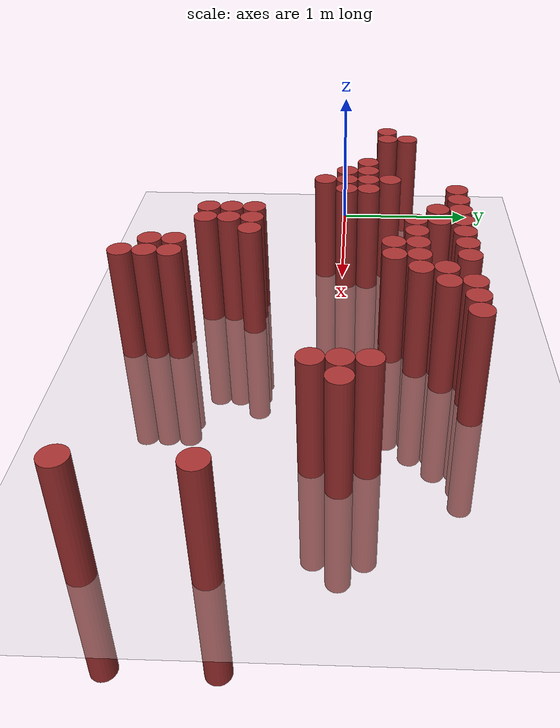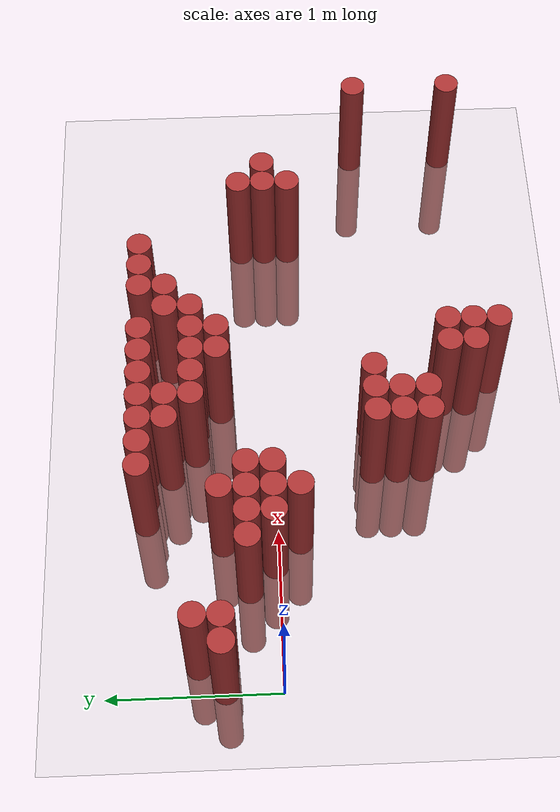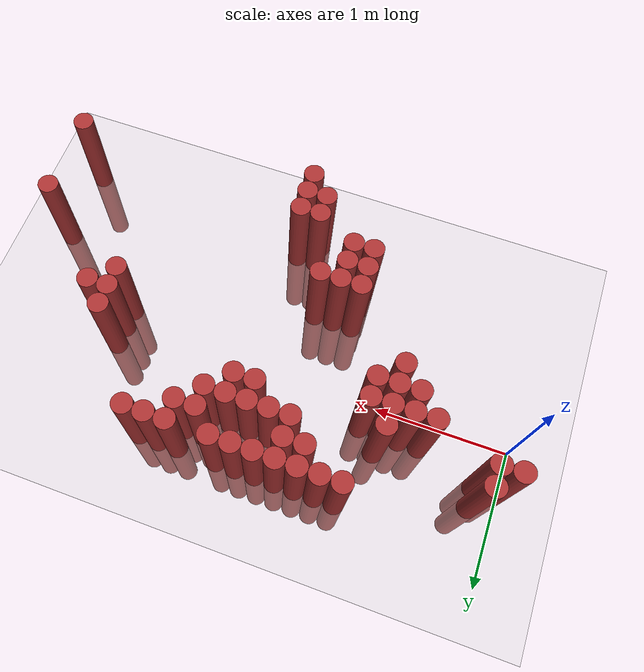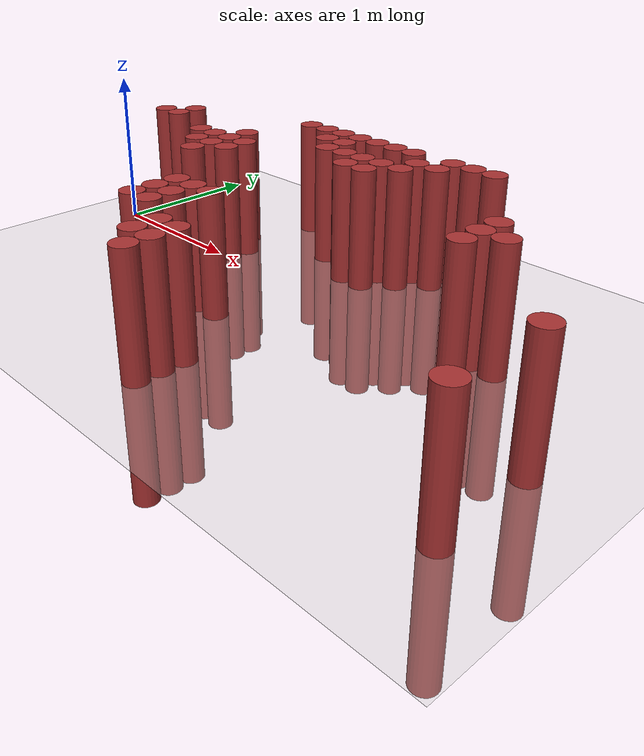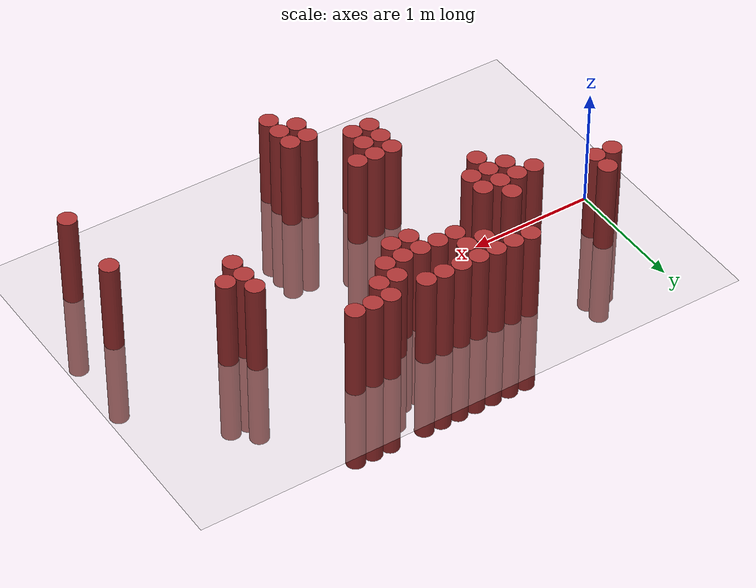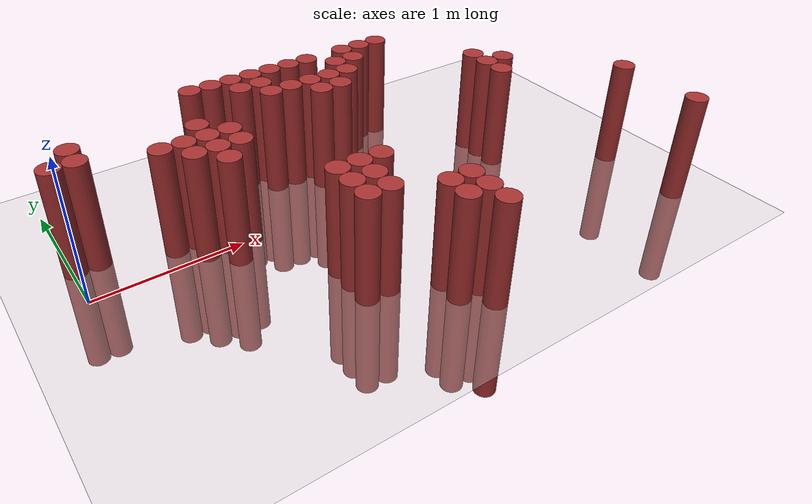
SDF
<sdf version="1.6">
 <world name="default">
  <model name="ground_plane">
   <static>1</static>
   <link name="link">
    <collision name="collision">
     <geometry><plane><normal>0 0 1</normal><size>100 100</size></plane></geometry>
     <surface><friction><ode><mu>100</mu><mu2>50</mu2></ode></friction></surface>
    </collision>
    <visual name="visual">
     <cast_shadows>0</cast_shadows>
     <geometry><plane><normal>0 0 1</normal><size>100 100</size></plane></geometry>
     <material>
      <script><uri>file://media/materials/scripts/gazebo.material</uri><name>Gazebo/Grey</name></script>
     </material>
    </visual>
   </link>
  </model>
  <model name="unit_cylinder_324">
   <static>1</static>
   <pose>0.025000 0.325000 0.000000 0.000000 0.000000 0.000000</pose>
   <link name="link">
    <inertial>
     <mass>1</mass>
     <inertia><ixx>0.145833</ixx><ixy>0</ixy><ixz>0</ixz><iyy>0.145833</iyy><iyz>0</iyz><izz>0.125</izz></inertia>
    </inertial>
    <collision name="collision">
     <geometry><cylinder><radius>0.075000</radius><length>1.5</length></cylinder></geometry>
    </collision>
    <visual name="visual">
     <geometry><cylinder><radius>0.075000</radius><length>1.5</length></cylinder></geometry>
     <material>
      <ambient>0.648000 0.192000 0.192000 1</ambient>
      <diffuse>0.648000 0.192000 0.192000 1</diffuse>
     </material>
     <material>
      <script><name>Gazebo/Grey</name><uri>file://media/materials/scripts/gazebo.material</uri></script>
     </material>
    </visual>
   </link>
  </model>
  <model name="unit_cylinder_327">
   <static>1</static>
   <pose>0.175000 0.325000 0.000000 0.000000 0.000000 0.000000</pose>
   <link name="link">
    <inertial>
     <mass>1</mass>
     <inertia><ixx>0.145833</ixx><ixy>0</ixy><ixz>0</ixz><iyy>0.145833</iyy><iyz>0</iyz><izz>0.125</izz></inertia>
    </inertial>
    <collision name="collision">
     <geometry><cylinder><radius>0.075000</radius><length>1.5</length></cylinder></geometry>
    </collision>
    <visual name="visual">
     <geometry><cylinder><radius>0.075000</radius><length>1.5</length></cylinder></geometry>
     <material>
      <ambient>0.648000 0.192000 0.192000 1</ambient>
      <diffuse>0.648000 0.192000 0.192000 1</diffuse>
     </material>
     <material>
      <script><name>Gazebo/Grey</name><uri>file://media/materials/scripts/gazebo.material</uri></script>
     </material>
    </visual>
   </link>
  </model>
  <model name="unit_cylinder_328">
   <static>1</static>
   <pose>0.175000 0.475000 0.000000 0.000000 0.000000 0.000000</pose>
   <link name="link">
    <inertial>
     <mass>1</mass>
     <inertia><ixx>0.145833</ixx><ixy>0</ixy><ixz>0</ixz><iyy>0.145833</iyy><iyz>0</iyz><izz>0.125</izz></inertia>
    </inertial>
    <collision name="collision">
     <geometry><cylinder><radius>0.075000</radius><length>1.5</length></cylinder></geometry>
    </collision>
    <visual name="visual">
     <geometry><cylinder><radius>0.075000</radius><length>1.5</length></cylinder></geometry>
     <material>
      <ambient>0.648000 0.192000 0.192000 1</ambient>
      <diffuse>0.648000 0.192000 0.192000 1</diffuse>
     </material>
     <material>
      <script><name>Gazebo/Grey</name><uri>file://media/materials/scripts/gazebo.material</uri></script>
     </material>
    </visual>
   </link>
  </model>
  <model name="unit_cylinder_335">
   <static>1</static>
   <pose>0.625000 0.175000 0.000000 0.000000 0.000000 0.000000</pose>
   <link name="link">
    <inertial>
     <mass>1</mass>
     <inertia><ixx>0.145833</ixx><ixy>0</ixy><ixz>0</ixz><iyy>0.145833</iyy><iyz>0</iyz><izz>0.125</izz></inertia>
    </inertial>
    <collision name="collision">
     <geometry><cylinder><radius>0.075000</radius><length>1.5</length></cylinder></geometry>
    </collision>
    <visual name="visual">
     <geometry><cylinder><radius>0.075000</radius><length>1.5</length></cylinder></geometry>
     <material>
      <ambient>0.648000 0.192000 0.192000 1</ambient>
      <diffuse>0.648000 0.192000 0.192000 1</diffuse>
     </material>
     <material>
      <script><name>Gazebo/Grey</name><uri>file://media/materials/scripts/gazebo.material</uri></script>
     </material>
    </visual>
   </link>
  </model>
  <model name="unit_cylinder_339">
   <static>1</static>
   <pose>0.775000 0.025000 0.000000 0.000000 0.000000 0.000000</pose>
   <link name="link">
    <inertial>
     <mass>1</mass>
     <inertia><ixx>0.145833</ixx><ixy>0</ixy><ixz>0</ixz><iyy>0.145833</iyy><iyz>0</iyz><izz>0.125</izz></inertia>
    </inertial>
    <collision name="collision">
     <geometry><cylinder><radius>0.075000</radius><length>1.5</length></cylinder></geometry>
    </collision>
    <visual name="visual">
     <geometry><cylinder><radius>0.075000</radius><length>1.5</length></cylinder></geometry>
     <material>
      <ambient>0.648000 0.192000 0.192000 1</ambient>
      <diffuse>0.648000 0.192000 0.192000 1</diffuse>
     </material>
     <material>
      <script><name>Gazebo/Grey</name><uri>file://media/materials/scripts/gazebo.material</uri></script>
     </material>
    </visual>
   </link>
  </model>
  <model name="unit_cylinder_340">
   <static>1</static>
   <pose>0.775000 0.175000 0.000000 0.000000 0.000000 0.000000</pose>
   <link name="link">
    <inertial>
     <mass>1</mass>
     <inertia><ixx>0.145833</ixx><ixy>0</ixy><ixz>0</ixz><iyy>0.145833</iyy><iyz>0</iyz><izz>0.125</izz></inertia>
    </inertial>
    <collision name="collision">
     <geometry><cylinder><radius>0.075000</radius><length>1.5</length></cylinder></geometry>
    </collision>
    <visual name="visual">
     <geometry><cylinder><radius>0.075000</radius><length>1.5</length></cylinder></geometry>
     <material>
      <ambient>0.648000 0.192000 0.192000 1</ambient>
      <diffuse>0.648000 0.192000 0.192000 1</diffuse>
     </material>
     <material>
      <script><name>Gazebo/Grey</name><uri>file://media/materials/scripts/gazebo.material</uri></script>
     </material>
    </visual>
   </link>
  </model>
  <model name="unit_cylinder_343">
   <static>1</static>
   <pose>0.925000 -0.125000 0.000000 0.000000 0.000000 0.000000</pose>
   <link name="link">
    <inertial>
     <mass>1</mass>
     <inertia><ixx>0.145833</ixx><ixy>0</ixy><ixz>0</ixz><iyy>0.145833</iyy><iyz>0</iyz><izz>0.125</izz></inertia>
    </inertial>
    <collision name="collision">
     <geometry><cylinder><radius>0.075000</radius><length>1.5</length></cylinder></geometry>
    </collision>
    <visual name="visual">
     <geometry><cylinder><radius>0.075000</radius><length>1.5</length></cylinder></geometry>
     <material>
      <ambient>0.648000 0.192000 0.192000 1</ambient>
      <diffuse>0.648000 0.192000 0.192000 1</diffuse>
     </material>
     <material>
      <script><name>Gazebo/Grey</name><uri>file://media/materials/scripts/gazebo.material</uri></script>
     </material>
    </visual>
   </link>
  </model>
  <model name="unit_cylinder_344">
   <static>1</static>
   <pose>0.925000 0.025000 0.000000 0.000000 0.000000 0.000000</pose>
   <link name="link">
    <inertial>
     <mass>1</mass>
     <inertia><ixx>0.145833</ixx><ixy>0</ixy><ixz>0</ixz><iyy>0.145833</iyy><iyz>0</iyz><izz>0.125</izz></inertia>
    </inertial>
    <collision name="collision">
     <geometry><cylinder><radius>0.075000</radius><length>1.5</length></cylinder></geometry>
    </collision>
    <visual name="visual">
     <geometry><cylinder><radius>0.075000</radius><length>1.5</length></cylinder></geometry>
     <material>
      <ambient>0.648000 0.192000 0.192000 1</ambient>
      <diffuse>0.648000 0.192000 0.192000 1</diffuse>
     </material>
     <material>
      <script><name>Gazebo/Grey</name><uri>file://media/materials/scripts/gazebo.material</uri></script>
     </material>
    </visual>
   </link>
  </model>
  <model name="unit_cylinder_345">
   <static>1</static>
   <pose>0.925000 0.175000 0.000000 0.000000 0.000000 0.000000</pose>
   <link name="link">
    <inertial>
     <mass>1</mass>
     <inertia><ixx>0.145833</ixx><ixy>0</ixy><ixz>0</ixz><iyy>0.145833</iyy><iyz>0</iyz><izz>0.125</izz></inertia>
    </inertial>
    <collision name="collision">
     <geometry><cylinder><radius>0.075000</radius><length>1.5</length></cylinder></geometry>
    </collision>
    <visual name="visual">
     <geometry><cylinder><radius>0.075000</radius><length>1.5</length></cylinder></geometry>
     <material>
      <ambient>0.648000 0.192000 0.192000 1</ambient>
      <diffuse>0.648000 0.192000 0.192000 1</diffuse>
     </material>
     <material>
      <script><name>Gazebo/Grey</name><uri>file://media/materials/scripts/gazebo.material</uri></script>
     </material>
    </visual>
   </link>
  </model>
  <model name="unit_cylinder_346">
   <static>1</static>
   <pose>0.925000 0.325000 0.000000 0.000000 0.000000 0.000000</pose>
   <link name="link">
    <inertial>
     <mass>1</mass>
     <inertia><ixx>0.145833</ixx><ixy>0</ixy><ixz>0</ixz><iyy>0.145833</iyy><iyz>0</iyz><izz>0.125</izz></inertia>
    </inertial>
    <collision name="collision">
     <geometry><cylinder><radius>0.075000</radius><length>1.5</length></cylinder></geometry>
    </collision>
    <visual name="visual">
     <geometry><cylinder><radius>0.075000</radius><length>1.5</length></cylinder></geometry>
     <material>
      <ambient>0.648000 0.192000 0.192000 1</ambient>
      <diffuse>0.648000 0.192000 0.192000 1</diffuse>
     </material>
     <material>
      <script><name>Gazebo/Grey</name><uri>file://media/materials/scripts/gazebo.material</uri></script>
     </material>
    </visual>
   </link>
  </model>
  <model name="unit_cylinder_348">
   <static>1</static>
   <pose>1.075000 0.025000 0.000000 0.000000 0.000000 0.000000</pose>
   <link name="link">
    <inertial>
     <mass>1</mass>
     <inertia><ixx>0.145833</ixx><ixy>0</ixy><ixz>0</ixz><iyy>0.145833</iyy><iyz>0</iyz><izz>0.125</izz></inertia>
    </inertial>
    <collision name="collision">
     <geometry><cylinder><radius>0.075000</radius><length>1.5</length></cylinder></geometry>
    </collision>
    <visual name="visual">
     <geometry><cylinder><radius>0.075000</radius><length>1.5</length></cylinder></geometry>
     <material>
      <ambient>0.648000 0.192000 0.192000 1</ambient>
      <diffuse>0.648000 0.192000 0.192000 1</diffuse>
     </material>
     <material>
      <script><name>Gazebo/Grey</name><uri>file://media/materials/scripts/gazebo.material</uri></script>
     </material>
    </visual>
   </link>
  </model>
  <model name="unit_cylinder_349">
   <static>1</static>
   <pose>1.075000 0.175000 0.000000 0.000000 0.000000 0.000000</pose>
   <link name="link">
    <inertial>
     <mass>1</mass>
     <inertia><ixx>0.145833</ixx><ixy>0</ixy><ixz>0</ixz><iyy>0.145833</iyy><iyz>0</iyz><izz>0.125</izz></inertia>
    </inertial>
    <collision name="collision">
     <geometry><cylinder><radius>0.075000</radius><length>1.5</length></cylinder></geometry>
    </collision>
    <visual name="visual">
     <geometry><cylinder><radius>0.075000</radius><length>1.5</length></cylinder></geometry>
     <material>
      <ambient>0.648000 0.192000 0.192000 1</ambient>
      <diffuse>0.648000 0.192000 0.192000 1</diffuse>
     </material>
     <material>
      <script><name>Gazebo/Grey</name><uri>file://media/materials/scripts/gazebo.material</uri></script>
     </material>
    </visual>
   </link>
  </model>
  <model name="unit_cylinder_350">
   <static>1</static>
   <pose>1.075000 0.775000 0.000000 0.000000 0.000000 0.000000</pose>
   <link name="link">
    <inertial>
     <mass>1</mass>
     <inertia><ixx>0.145833</ixx><ixy>0</ixy><ixz>0</ixz><iyy>0.145833</iyy><iyz>0</iyz><izz>0.125</izz></inertia>
    </inertial>
    <collision name="collision">
     <geometry><cylinder><radius>0.075000</radius><length>1.5</length></cylinder></geometry>
    </collision>
    <visual name="visual">
     <geometry><cylinder><radius>0.075000</radius><length>1.5</length></cylinder></geometry>
     <material>
      <ambient>0.648000 0.192000 0.192000 1</ambient>
      <diffuse>0.648000 0.192000 0.192000 1</diffuse>
     </material>
     <material>
      <script><name>Gazebo/Grey</name><uri>file://media/materials/scripts/gazebo.material</uri></script>
     </material>
    </visual>
   </link>
  </model>
  <model name="unit_cylinder_351">
   <static>1</static>
   <pose>1.225000 0.775000 0.000000 0.000000 0.000000 0.000000</pose>
   <link name="link">
    <inertial>
     <mass>1</mass>
     <inertia><ixx>0.145833</ixx><ixy>0</ixy><ixz>0</ixz><iyy>0.145833</iyy><iyz>0</iyz><izz>0.125</izz></inertia>
    </inertial>
    <collision name="collision">
     <geometry><cylinder><radius>0.075000</radius><length>1.5</length></cylinder></geometry>
    </collision>
    <visual name="visual">
     <geometry><cylinder><radius>0.075000</radius><length>1.5</length></cylinder></geometry>
     <material>
      <ambient>0.648000 0.192000 0.192000 1</ambient>
      <diffuse>0.648000 0.192000 0.192000 1</diffuse>
     </material>
     <material>
      <script><name>Gazebo/Grey</name><uri>file://media/materials/scripts/gazebo.material</uri></script>
     </material>
    </visual>
   </link>
  </model>
  <model name="unit_cylinder_353">
   <static>1</static>
   <pose>1.375000 -0.875000 0.000000 0.000000 0.000000 0.000000</pose>
   <link name="link">
    <inertial>
     <mass>1</mass>
     <inertia><ixx>0.145833</ixx><ixy>0</ixy><ixz>0</ixz><iyy>0.145833</iyy><iyz>0</iyz><izz>0.125</izz></inertia>
    </inertial>
    <collision name="collision">
     <geometry><cylinder><radius>0.075000</radius><length>1.5</length></cylinder></geometry>
    </collision>
    <visual name="visual">
     <geometry><cylinder><radius>0.075000</radius><length>1.5</length></cylinder></geometry>
     <material>
      <ambient>0.648000 0.192000 0.192000 1</ambient>
      <diffuse>0.648000 0.192000 0.192000 1</diffuse>
     </material>
     <material>
      <script><name>Gazebo/Grey</name><uri>file://media/materials/scripts/gazebo.material</uri></script>
     </material>
    </visual>
   </link>
  </model>
  <model name="unit_cylinder_354">
   <static>1</static>
   <pose>1.375000 -0.725000 0.000000 0.000000 0.000000 0.000000</pose>
   <link name="link">
    <inertial>
     <mass>1</mass>
     <inertia><ixx>0.145833</ixx><ixy>0</ixy><ixz>0</ixz><iyy>0.145833</iyy><iyz>0</iyz><izz>0.125</izz></inertia>
    </inertial>
    <collision name="collision">
     <geometry><cylinder><radius>0.075000</radius><length>1.5</length></cylinder></geometry>
    </collision>
    <visual name="visual">
     <geometry><cylinder><radius>0.075000</radius><length>1.5</length></cylinder></geometry>
     <material>
      <ambient>0.648000 0.192000 0.192000 1</ambient>
      <diffuse>0.648000 0.192000 0.192000 1</diffuse>
     </material>
     <material>
      <script><name>Gazebo/Grey</name><uri>file://media/materials/scripts/gazebo.material</uri></script>
     </material>
    </visual>
   </link>
  </model>
  <model name="unit_cylinder_355">
   <static>1</static>
   <pose>1.375000 -0.575000 0.000000 0.000000 0.000000 0.000000</pose>
   <link name="link">
    <inertial>
     <mass>1</mass>
     <inertia><ixx>0.145833</ixx><ixy>0</ixy><ixz>0</ixz><iyy>0.145833</iyy><iyz>0</iyz><izz>0.125</izz></inertia>
    </inertial>
    <collision name="collision">
     <geometry><cylinder><radius>0.075000</radius><length>1.5</length></cylinder></geometry>
    </collision>
    <visual name="visual">
     <geometry><cylinder><radius>0.075000</radius><length>1.5</length></cylinder></geometry>
     <material>
      <ambient>0.648000 0.192000 0.192000 1</ambient>
      <diffuse>0.648000 0.192000 0.192000 1</diffuse>
     </material>
     <material>
      <script><name>Gazebo/Grey</name><uri>file://media/materials/scripts/gazebo.material</uri></script>
     </material>
    </visual>
   </link>
  </model>
  <model name="unit_cylinder_356">
   <static>1</static>
   <pose>1.375000 0.625000 0.000000 0.000000 0.000000 0.000000</pose>
   <link name="link">
    <inertial>
     <mass>1</mass>
     <inertia><ixx>0.145833</ixx><ixy>0</ixy><ixz>0</ixz><iyy>0.145833</iyy><iyz>0</iyz><izz>0.125</izz></inertia>
    </inertial>
    <collision name="collision">
     <geometry><cylinder><radius>0.075000</radius><length>1.5</length></cylinder></geometry>
    </collision>
    <visual name="visual">
     <geometry><cylinder><radius>0.075000</radius><length>1.5</length></cylinder></geometry>
     <material>
      <ambient>0.648000 0.192000 0.192000 1</ambient>
      <diffuse>0.648000 0.192000 0.192000 1</diffuse>
     </material>
     <material>
      <script><name>Gazebo/Grey</name><uri>file://media/materials/scripts/gazebo.material</uri></script>
     </material>
    </visual>
   </link>
  </model>
  <model name="unit_cylinder_357">
   <static>1</static>
   <pose>1.375000 0.775000 0.000000 0.000000 0.000000 0.000000</pose>
   <link name="link">
    <inertial>
     <mass>1</mass>
     <inertia><ixx>0.145833</ixx><ixy>0</ixy><ixz>0</ixz><iyy>0.145833</iyy><iyz>0</iyz><izz>0.125</izz></inertia>
    </inertial>
    <collision name="collision">
     <geometry><cylinder><radius>0.075000</radius><length>1.5</length></cylinder></geometry>
    </collision>
    <visual name="visual">
     <geometry><cylinder><radius>0.075000</radius><length>1.5</length></cylinder></geometry>
     <material>
      <ambient>0.648000 0.192000 0.192000 1</ambient>
      <diffuse>0.648000 0.192000 0.192000 1</diffuse>
     </material>
     <material>
      <script><name>Gazebo/Grey</name><uri>file://media/materials/scripts/gazebo.material</uri></script>
     </material>
    </visual>
   </link>
  </model>
  <model name="unit_cylinder_359">
   <static>1</static>
   <pose>1.525000 -0.875000 0.000000 0.000000 0.000000 0.000000</pose>
   <link name="link">
    <inertial>
     <mass>1</mass>
     <inertia><ixx>0.145833</ixx><ixy>0</ixy><ixz>0</ixz><iyy>0.145833</iyy><iyz>0</iyz><izz>0.125</izz></inertia>
    </inertial>
    <collision name="collision">
     <geometry><cylinder><radius>0.075000</radius><length>1.5</length></cylinder></geometry>
    </collision>
    <visual name="visual">
     <geometry><cylinder><radius>0.075000</radius><length>1.5</length></cylinder></geometry>
     <material>
      <ambient>0.648000 0.192000 0.192000 1</ambient>
      <diffuse>0.648000 0.192000 0.192000 1</diffuse>
     </material>
     <material>
      <script><name>Gazebo/Grey</name><uri>file://media/materials/scripts/gazebo.material</uri></script>
     </material>
    </visual>
   </link>
  </model>
  <model name="unit_cylinder_360">
   <static>1</static>
   <pose>1.525000 -0.725000 0.000000 0.000000 0.000000 0.000000</pose>
   <link name="link">
    <inertial>
     <mass>1</mass>
     <inertia><ixx>0.145833</ixx><ixy>0</ixy><ixz>0</ixz><iyy>0.145833</iyy><iyz>0</iyz><izz>0.125</izz></inertia>
    </inertial>
    <collision name="collision">
     <geometry><cylinder><radius>0.075000</radius><length>1.5</length></cylinder></geometry>
    </collision>
    <visual name="visual">
     <geometry><cylinder><radius>0.075000</radius><length>1.5</length></cylinder></geometry>
     <material>
      <ambient>0.648000 0.192000 0.192000 1</ambient>
      <diffuse>0.648000 0.192000 0.192000 1</diffuse>
     </material>
     <material>
      <script><name>Gazebo/Grey</name><uri>file://media/materials/scripts/gazebo.material</uri></script>
     </material>
    </visual>
   </link>
  </model>
  <model name="unit_cylinder_361">
   <static>1</static>
   <pose>1.525000 -0.575000 0.000000 0.000000 0.000000 0.000000</pose>
   <link name="link">
    <inertial>
     <mass>1</mass>
     <inertia><ixx>0.145833</ixx><ixy>0</ixy><ixz>0</ixz><iyy>0.145833</iyy><iyz>0</iyz><izz>0.125</izz></inertia>
    </inertial>
    <collision name="collision">
     <geometry><cylinder><radius>0.075000</radius><length>1.5</length></cylinder></geometry>
    </collision>
    <visual name="visual">
     <geometry><cylinder><radius>0.075000</radius><length>1.5</length></cylinder></geometry>
     <material>
      <ambient>0.648000 0.192000 0.192000 1</ambient>
      <diffuse>0.648000 0.192000 0.192000 1</diffuse>
     </material>
     <material>
      <script><name>Gazebo/Grey</name><uri>file://media/materials/scripts/gazebo.material</uri></script>
     </material>
    </visual>
   </link>
  </model>
  <model name="unit_cylinder_362">
   <static>1</static>
   <pose>1.525000 0.475000 0.000000 0.000000 0.000000 0.000000</pose>
   <link name="link">
    <inertial>
     <mass>1</mass>
     <inertia><ixx>0.145833</ixx><ixy>0</ixy><ixz>0</ixz><iyy>0.145833</iyy><iyz>0</iyz><izz>0.125</izz></inertia>
    </inertial>
    <collision name="collision">
     <geometry><cylinder><radius>0.075000</radius><length>1.5</length></cylinder></geometry>
    </collision>
    <visual name="visual">
     <geometry><cylinder><radius>0.075000</radius><length>1.5</length></cylinder></geometry>
     <material>
      <ambient>0.648000 0.192000 0.192000 1</ambient>
      <diffuse>0.648000 0.192000 0.192000 1</diffuse>
     </material>
     <material>
      <script><name>Gazebo/Grey</name><uri>file://media/materials/scripts/gazebo.material</uri></script>
     </material>
    </visual>
   </link>
  </model>
  <model name="unit_cylinder_363">
   <static>1</static>
   <pose>1.525000 0.625000 0.000000 0.000000 0.000000 0.000000</pose>
   <link name="link">
    <inertial>
     <mass>1</mass>
     <inertia><ixx>0.145833</ixx><ixy>0</ixy><ixz>0</ixz><iyy>0.145833</iyy><iyz>0</iyz><izz>0.125</izz></inertia>
    </inertial>
    <collision name="collision">
     <geometry><cylinder><radius>0.075000</radius><length>1.5</length></cylinder></geometry>
    </collision>
    <visual name="visual">
     <geometry><cylinder><radius>0.075000</radius><length>1.5</length></cylinder></geometry>
     <material>
      <ambient>0.648000 0.192000 0.192000 1</ambient>
      <diffuse>0.648000 0.192000 0.192000 1</diffuse>
     </material>
     <material>
      <script><name>Gazebo/Grey</name><uri>file://media/materials/scripts/gazebo.material</uri></script>
     </material>
    </visual>
   </link>
  </model>
  <model name="unit_cylinder_364">
   <static>1</static>
   <pose>1.525000 0.775000 0.000000 0.000000 0.000000 0.000000</pose>
   <link name="link">
    <inertial>
     <mass>1</mass>
     <inertia><ixx>0.145833</ixx><ixy>0</ixy><ixz>0</ixz><iyy>0.145833</iyy><iyz>0</iyz><izz>0.125</izz></inertia>
    </inertial>
    <collision name="collision">
     <geometry><cylinder><radius>0.075000</radius><length>1.5</length></cylinder></geometry>
    </collision>
    <visual name="visual">
     <geometry><cylinder><radius>0.075000</radius><length>1.5</length></cylinder></geometry>
     <material>
      <ambient>0.648000 0.192000 0.192000 1</ambient>
      <diffuse>0.648000 0.192000 0.192000 1</diffuse>
     </material>
     <material>
      <script><name>Gazebo/Grey</name><uri>file://media/materials/scripts/gazebo.material</uri></script>
     </material>
    </visual>
   </link>
  </model>
  <model name="unit_cylinder_367">
   <static>1</static>
   <pose>1.675000 -0.575000 0.000000 0.000000 0.000000 0.000000</pose>
   <link name="link">
    <inertial>
     <mass>1</mass>
     <inertia><ixx>0.145833</ixx><ixy>0</ixy><ixz>0</ixz><iyy>0.145833</iyy><iyz>0</iyz><izz>0.125</izz></inertia>
    </inertial>
    <collision name="collision">
     <geometry><cylinder><radius>0.075000</radius><length>1.5</length></cylinder></geometry>
    </collision>
    <visual name="visual">
     <geometry><cylinder><radius>0.075000</radius><length>1.5</length></cylinder></geometry>
     <material>
      <ambient>0.648000 0.192000 0.192000 1</ambient>
      <diffuse>0.648000 0.192000 0.192000 1</diffuse>
     </material>
     <material>
      <script><name>Gazebo/Grey</name><uri>file://media/materials/scripts/gazebo.material</uri></script>
     </material>
    </visual>
   </link>
  </model>
  <model name="unit_cylinder_368">
   <static>1</static>
   <pose>1.675000 0.475000 0.000000 0.000000 0.000000 0.000000</pose>
   <link name="link">
    <inertial>
     <mass>1</mass>
     <inertia><ixx>0.145833</ixx><ixy>0</ixy><ixz>0</ixz><iyy>0.145833</iyy><iyz>0</iyz><izz>0.125</izz></inertia>
    </inertial>
    <collision name="collision">
     <geometry><cylinder><radius>0.075000</radius><length>1.5</length></cylinder></geometry>
    </collision>
    <visual name="visual">
     <geometry><cylinder><radius>0.075000</radius><length>1.5</length></cylinder></geometry>
     <material>
      <ambient>0.648000 0.192000 0.192000 1</ambient>
      <diffuse>0.648000 0.192000 0.192000 1</diffuse>
     </material>
     <material>
      <script><name>Gazebo/Grey</name><uri>file://media/materials/scripts/gazebo.material</uri></script>
     </material>
    </visual>
   </link>
  </model>
  <model name="unit_cylinder_369">
   <static>1</static>
   <pose>1.675000 0.775000 0.000000 0.000000 0.000000 0.000000</pose>
   <link name="link">
    <inertial>
     <mass>1</mass>
     <inertia><ixx>0.145833</ixx><ixy>0</ixy><ixz>0</ixz><iyy>0.145833</iyy><iyz>0</iyz><izz>0.125</izz></inertia>
    </inertial>
    <collision name="collision">
     <geometry><cylinder><radius>0.075000</radius><length>1.5</length></cylinder></geometry>
    </collision>
    <visual name="visual">
     <geometry><cylinder><radius>0.075000</radius><length>1.5</length></cylinder></geometry>
     <material>
      <ambient>0.648000 0.192000 0.192000 1</ambient>
      <diffuse>0.648000 0.192000 0.192000 1</diffuse>
     </material>
     <material>
      <script><name>Gazebo/Grey</name><uri>file://media/materials/scripts/gazebo.material</uri></script>
     </material>
    </visual>
   </link>
  </model>
  <model name="unit_cylinder_373">
   <static>1</static>
   <pose>1.825000 -1.175000 0.000000 0.000000 0.000000 0.000000</pose>
   <link name="link">
    <inertial>
     <mass>1</mass>
     <inertia><ixx>0.145833</ixx><ixy>0</ixy><ixz>0</ixz><iyy>0.145833</iyy><iyz>0</iyz><izz>0.125</izz></inertia>
    </inertial>
    <collision name="collision">
     <geometry><cylinder><radius>0.075000</radius><length>1.5</length></cylinder></geometry>
    </collision>
    <visual name="visual">
     <geometry><cylinder><radius>0.075000</radius><length>1.5</length></cylinder></geometry>
     <material>
      <ambient>0.648000 0.192000 0.192000 1</ambient>
      <diffuse>0.648000 0.192000 0.192000 1</diffuse>
     </material>
     <material>
      <script><name>Gazebo/Grey</name><uri>file://media/materials/scripts/gazebo.material</uri></script>
     </material>
    </visual>
   </link>
  </model>
  <model name="unit_cylinder_374">
   <static>1</static>
   <pose>1.825000 -1.025000 0.000000 0.000000 0.000000 0.000000</pose>
   <link name="link">
    <inertial>
     <mass>1</mass>
     <inertia><ixx>0.145833</ixx><ixy>0</ixy><ixz>0</ixz><iyy>0.145833</iyy><iyz>0</iyz><izz>0.125</izz></inertia>
    </inertial>
    <collision name="collision">
     <geometry><cylinder><radius>0.075000</radius><length>1.5</length></cylinder></geometry>
    </collision>
    <visual name="visual">
     <geometry><cylinder><radius>0.075000</radius><length>1.5</length></cylinder></geometry>
     <material>
      <ambient>0.648000 0.192000 0.192000 1</ambient>
      <diffuse>0.648000 0.192000 0.192000 1</diffuse>
     </material>
     <material>
      <script><name>Gazebo/Grey</name><uri>file://media/materials/scripts/gazebo.material</uri></script>
     </material>
    </visual>
   </link>
  </model>
  <model name="unit_cylinder_375">
   <static>1</static>
   <pose>1.825000 0.325000 0.000000 0.000000 0.000000 0.000000</pose>
   <link name="link">
    <inertial>
     <mass>1</mass>
     <inertia><ixx>0.145833</ixx><ixy>0</ixy><ixz>0</ixz><iyy>0.145833</iyy><iyz>0</iyz><izz>0.125</izz></inertia>
    </inertial>
    <collision name="collision">
     <geometry><cylinder><radius>0.075000</radius><length>1.5</length></cylinder></geometry>
    </collision>
    <visual name="visual">
     <geometry><cylinder><radius>0.075000</radius><length>1.5</length></cylinder></geometry>
     <material>
      <ambient>0.648000 0.192000 0.192000 1</ambient>
      <diffuse>0.648000 0.192000 0.192000 1</diffuse>
     </material>
     <material>
      <script><name>Gazebo/Grey</name><uri>file://media/materials/scripts/gazebo.material</uri></script>
     </material>
    </visual>
   </link>
  </model>
  <model name="unit_cylinder_376">
   <static>1</static>
   <pose>1.825000 0.475000 0.000000 0.000000 0.000000 0.000000</pose>
   <link name="link">
    <inertial>
     <mass>1</mass>
     <inertia><ixx>0.145833</ixx><ixy>0</ixy><ixz>0</ixz><iyy>0.145833</iyy><iyz>0</iyz><izz>0.125</izz></inertia>
    </inertial>
    <collision name="collision">
     <geometry><cylinder><radius>0.075000</radius><length>1.5</length></cylinder></geometry>
    </collision>
    <visual name="visual">
     <geometry><cylinder><radius>0.075000</radius><length>1.5</length></cylinder></geometry>
     <material>
      <ambient>0.648000 0.192000 0.192000 1</ambient>
      <diffuse>0.648000 0.192000 0.192000 1</diffuse>
     </material>
     <material>
      <script><name>Gazebo/Grey</name><uri>file://media/materials/scripts/gazebo.material</uri></script>
     </material>
    </visual>
   </link>
  </model>
  <model name="unit_cylinder_377">
   <static>1</static>
   <pose>1.825000 0.775000 0.000000 0.000000 0.000000 0.000000</pose>
   <link name="link">
    <inertial>
     <mass>1</mass>
     <inertia><ixx>0.145833</ixx><ixy>0</ixy><ixz>0</ixz><iyy>0.145833</iyy><iyz>0</iyz><izz>0.125</izz></inertia>
    </inertial>
    <collision name="collision">
     <geometry><cylinder><radius>0.075000</radius><length>1.5</length></cylinder></geometry>
    </collision>
    <visual name="visual">
     <geometry><cylinder><radius>0.075000</radius><length>1.5</length></cylinder></geometry>
     <material>
      <ambient>0.648000 0.192000 0.192000 1</ambient>
      <diffuse>0.648000 0.192000 0.192000 1</diffuse>
     </material>
     <material>
      <script><name>Gazebo/Grey</name><uri>file://media/materials/scripts/gazebo.material</uri></script>
     </material>
    </visual>
   </link>
  </model>
  <model name="unit_cylinder_379">
   <static>1</static>
   <pose>1.975000 -1.325000 0.000000 0.000000 0.000000 0.000000</pose>
   <link name="link">
    <inertial>
     <mass>1</mass>
     <inertia><ixx>0.145833</ixx><ixy>0</ixy><ixz>0</ixz><iyy>0.145833</iyy><iyz>0</iyz><izz>0.125</izz></inertia>
    </inertial>
    <collision name="collision">
     <geometry><cylinder><radius>0.075000</radius><length>1.5</length></cylinder></geometry>
    </collision>
    <visual name="visual">
     <geometry><cylinder><radius>0.075000</radius><length>1.5</length></cylinder></geometry>
     <material>
      <ambient>0.648000 0.192000 0.192000 1</ambient>
      <diffuse>0.648000 0.192000 0.192000 1</diffuse>
     </material>
     <material>
      <script><name>Gazebo/Grey</name><uri>file://media/materials/scripts/gazebo.material</uri></script>
     </material>
    </visual>
   </link>
  </model>
  <model name="unit_cylinder_380">
   <static>1</static>
   <pose>1.975000 -1.175000 0.000000 0.000000 0.000000 0.000000</pose>
   <link name="link">
    <inertial>
     <mass>1</mass>
     <inertia><ixx>0.145833</ixx><ixy>0</ixy><ixz>0</ixz><iyy>0.145833</iyy><iyz>0</iyz><izz>0.125</izz></inertia>
    </inertial>
    <collision name="collision">
     <geometry><cylinder><radius>0.075000</radius><length>1.5</length></cylinder></geometry>
    </collision>
    <visual name="visual">
     <geometry><cylinder><radius>0.075000</radius><length>1.5</length></cylinder></geometry>
     <material>
      <ambient>0.648000 0.192000 0.192000 1</ambient>
      <diffuse>0.648000 0.192000 0.192000 1</diffuse>
     </material>
     <material>
      <script><name>Gazebo/Grey</name><uri>file://media/materials/scripts/gazebo.material</uri></script>
     </material>
    </visual>
   </link>
  </model>
  <model name="unit_cylinder_381">
   <static>1</static>
   <pose>1.975000 -1.025000 0.000000 0.000000 0.000000 0.000000</pose>
   <link name="link">
    <inertial>
     <mass>1</mass>
     <inertia><ixx>0.145833</ixx><ixy>0</ixy><ixz>0</ixz><iyy>0.145833</iyy><iyz>0</iyz><izz>0.125</izz></inertia>
    </inertial>
    <collision name="collision">
     <geometry><cylinder><radius>0.075000</radius><length>1.5</length></cylinder></geometry>
    </collision>
    <visual name="visual">
     <geometry><cylinder><radius>0.075000</radius><length>1.5</length></cylinder></geometry>
     <material>
      <ambient>0.648000 0.192000 0.192000 1</ambient>
      <diffuse>0.648000 0.192000 0.192000 1</diffuse>
     </material>
     <material>
      <script><name>Gazebo/Grey</name><uri>file://media/materials/scripts/gazebo.material</uri></script>
     </material>
    </visual>
   </link>
  </model>
  <model name="unit_cylinder_382">
   <static>1</static>
   <pose>1.975000 0.325000 0.000000 0.000000 0.000000 0.000000</pose>
   <link name="link">
    <inertial>
     <mass>1</mass>
     <inertia><ixx>0.145833</ixx><ixy>0</ixy><ixz>0</ixz><iyy>0.145833</iyy><iyz>0</iyz><izz>0.125</izz></inertia>
    </inertial>
    <collision name="collision">
     <geometry><cylinder><radius>0.075000</radius><length>1.5</length></cylinder></geometry>
    </collision>
    <visual name="visual">
     <geometry><cylinder><radius>0.075000</radius><length>1.5</length></cylinder></geometry>
     <material>
      <ambient>0.648000 0.192000 0.192000 1</ambient>
      <diffuse>0.648000 0.192000 0.192000 1</diffuse>
     </material>
     <material>
      <script><name>Gazebo/Grey</name><uri>file://media/materials/scripts/gazebo.material</uri></script>
     </material>
    </visual>
   </link>
  </model>
  <model name="unit_cylinder_383">
   <static>1</static>
   <pose>1.975000 0.475000 0.000000 0.000000 0.000000 0.000000</pose>
   <link name="link">
    <inertial>
     <mass>1</mass>
     <inertia><ixx>0.145833</ixx><ixy>0</ixy><ixz>0</ixz><iyy>0.145833</iyy><iyz>0</iyz><izz>0.125</izz></inertia>
    </inertial>
    <collision name="collision">
     <geometry><cylinder><radius>0.075000</radius><length>1.5</length></cylinder></geometry>
    </collision>
    <visual name="visual">
     <geometry><cylinder><radius>0.075000</radius><length>1.5</length></cylinder></geometry>
     <material>
      <ambient>0.648000 0.192000 0.192000 1</ambient>
      <diffuse>0.648000 0.192000 0.192000 1</diffuse>
     </material>
     <material>
      <script><name>Gazebo/Grey</name><uri>file://media/materials/scripts/gazebo.material</uri></script>
     </material>
    </visual>
   </link>
  </model>
  <model name="unit_cylinder_384">
   <static>1</static>
   <pose>1.975000 0.775000 0.000000 0.000000 0.000000 0.000000</pose>
   <link name="link">
    <inertial>
     <mass>1</mass>
     <inertia><ixx>0.145833</ixx><ixy>0</ixy><ixz>0</ixz><iyy>0.145833</iyy><iyz>0</iyz><izz>0.125</izz></inertia>
    </inertial>
    <collision name="collision">
     <geometry><cylinder><radius>0.075000</radius><length>1.5</length></cylinder></geometry>
    </collision>
    <visual name="visual">
     <geometry><cylinder><radius>0.075000</radius><length>1.5</length></cylinder></geometry>
     <material>
      <ambient>0.648000 0.192000 0.192000 1</ambient>
      <diffuse>0.648000 0.192000 0.192000 1</diffuse>
     </material>
     <material>
      <script><name>Gazebo/Grey</name><uri>file://media/materials/scripts/gazebo.material</uri></script>
     </material>
    </visual>
   </link>
  </model>
  <model name="unit_cylinder_391">
   <static>1</static>
   <pose>2.125000 0.475000 0.000000 0.000000 0.000000 0.000000</pose>
   <link name="link">
    <inertial>
     <mass>1</mass>
     <inertia><ixx>0.145833</ixx><ixy>0</ixy><ixz>0</ixz><iyy>0.145833</iyy><iyz>0</iyz><izz>0.125</izz></inertia>
    </inertial>
    <collision name="collision">
     <geometry><cylinder><radius>0.075000</radius><length>1.5</length></cylinder></geometry>
    </collision>
    <visual name="visual">
     <geometry><cylinder><radius>0.075000</radius><length>1.5</length></cylinder></geometry>
     <material>
      <ambient>0.648000 0.192000 0.192000 1</ambient>
      <diffuse>0.648000 0.192000 0.192000 1</diffuse>
     </material>
     <material>
      <script><name>Gazebo/Grey</name><uri>file://media/materials/scripts/gazebo.material</uri></script>
     </material>
    </visual>
   </link>
  </model>
  <model name="unit_cylinder_392">
   <static>1</static>
   <pose>2.125000 0.625000 0.000000 0.000000 0.000000 0.000000</pose>
   <link name="link">
    <inertial>
     <mass>1</mass>
     <inertia><ixx>0.145833</ixx><ixy>0</ixy><ixz>0</ixz><iyy>0.145833</iyy><iyz>0</iyz><izz>0.125</izz></inertia>
    </inertial>
    <collision name="collision">
     <geometry><cylinder><radius>0.075000</radius><length>1.5</length></cylinder></geometry>
    </collision>
    <visual name="visual">
     <geometry><cylinder><radius>0.075000</radius><length>1.5</length></cylinder></geometry>
     <material>
      <ambient>0.648000 0.192000 0.192000 1</ambient>
      <diffuse>0.648000 0.192000 0.192000 1</diffuse>
     </material>
     <material>
      <script><name>Gazebo/Grey</name><uri>file://media/materials/scripts/gazebo.material</uri></script>
     </material>
    </visual>
   </link>
  </model>
  <model name="unit_cylinder_400">
   <static>1</static>
   <pose>2.275000 0.625000 0.000000 0.000000 0.000000 0.000000</pose>
   <link name="link">
    <inertial>
     <mass>1</mass>
     <inertia><ixx>0.145833</ixx><ixy>0</ixy><ixz>0</ixz><iyy>0.145833</iyy><iyz>0</iyz><izz>0.125</izz></inertia>
    </inertial>
    <collision name="collision">
     <geometry><cylinder><radius>0.075000</radius><length>1.5</length></cylinder></geometry>
    </collision>
    <visual name="visual">
     <geometry><cylinder><radius>0.075000</radius><length>1.5</length></cylinder></geometry>
     <material>
      <ambient>0.648000 0.192000 0.192000 1</ambient>
      <diffuse>0.648000 0.192000 0.192000 1</diffuse>
     </material>
     <material>
      <script><name>Gazebo/Grey</name><uri>file://media/materials/scripts/gazebo.material</uri></script>
     </material>
    </visual>
   </link>
  </model>
  <model name="unit_cylinder_401">
   <static>1</static>
   <pose>2.275000 0.775000 0.000000 0.000000 0.000000 0.000000</pose>
   <link name="link">
    <inertial>
     <mass>1</mass>
     <inertia><ixx>0.145833</ixx><ixy>0</ixy><ixz>0</ixz><iyy>0.145833</iyy><iyz>0</iyz><izz>0.125</izz></inertia>
    </inertial>
    <collision name="collision">
     <geometry><cylinder><radius>0.075000</radius><length>1.5</length></cylinder></geometry>
    </collision>
    <visual name="visual">
     <geometry><cylinder><radius>0.075000</radius><length>1.5</length></cylinder></geometry>
     <material>
      <ambient>0.648000 0.192000 0.192000 1</ambient>
      <diffuse>0.648000 0.192000 0.192000 1</diffuse>
     </material>
     <material>
      <script><name>Gazebo/Grey</name><uri>file://media/materials/scripts/gazebo.material</uri></script>
     </material>
    </visual>
   </link>
  </model>
  <model name="unit_cylinder_405">
   <static>1</static>
   <pose>2.425000 0.775000 0.000000 0.000000 0.000000 0.000000</pose>
   <link name="link">
    <inertial>
     <mass>1</mass>
     <inertia><ixx>0.145833</ixx><ixy>0</ixy><ixz>0</ixz><iyy>0.145833</iyy><iyz>0</iyz><izz>0.125</izz></inertia>
    </inertial>
    <collision name="collision">
     <geometry><cylinder><radius>0.075000</radius><length>1.5</length></cylinder></geometry>
    </collision>
    <visual name="visual">
     <geometry><cylinder><radius>0.075000</radius><length>1.5</length></cylinder></geometry>
     <material>
      <ambient>0.648000 0.192000 0.192000 1</ambient>
      <diffuse>0.648000 0.192000 0.192000 1</diffuse>
     </material>
     <material>
      <script><name>Gazebo/Grey</name><uri>file://media/materials/scripts/gazebo.material</uri></script>
     </material>
    </visual>
   </link>
  </model>
  <model name="unit_cylinder_407">
   <static>1</static>
   <pose>2.575000 0.775000 0.000000 0.000000 0.000000 0.000000</pose>
   <link name="link">
    <inertial>
     <mass>1</mass>
     <inertia><ixx>0.145833</ixx><ixy>0</ixy><ixz>0</ixz><iyy>0.145833</iyy><iyz>0</iyz><izz>0.125</izz></inertia>
    </inertial>
    <collision name="collision">
     <geometry><cylinder><radius>0.075000</radius><length>1.5</length></cylinder></geometry>
    </collision>
    <visual name="visual">
     <geometry><cylinder><radius>0.075000</radius><length>1.5</length></cylinder></geometry>
     <material>
      <ambient>0.648000 0.192000 0.192000 1</ambient>
      <diffuse>0.648000 0.192000 0.192000 1</diffuse>
     </material>
     <material>
      <script><name>Gazebo/Grey</name><uri>file://media/materials/scripts/gazebo.material</uri></script>
     </material>
    </visual>
   </link>
  </model>
  <model name="unit_cylinder_411">
   <static>1</static>
   <pose>3.025000 -0.125000 0.000000 0.000000 0.000000 0.000000</pose>
   <link name="link">
    <inertial>
     <mass>1</mass>
     <inertia><ixx>0.145833</ixx><ixy>0</ixy><ixz>0</ixz><iyy>0.145833</iyy><iyz>0</iyz><izz>0.125</izz></inertia>
    </inertial>
    <collision name="collision">
     <geometry><cylinder><radius>0.075000</radius><length>1.5</length></cylinder></geometry>
    </collision>
    <visual name="visual">
     <geometry><cylinder><radius>0.075000</radius><length>1.5</length></cylinder></geometry>
     <material>
      <ambient>0.648000 0.192000 0.192000 1</ambient>
      <diffuse>0.648000 0.192000 0.192000 1</diffuse>
     </material>
     <material>
      <script><name>Gazebo/Grey</name><uri>file://media/materials/scripts/gazebo.material</uri></script>
     </material>
    </visual>
   </link>
  </model>
  <model name="unit_cylinder_412">
   <static>1</static>
   <pose>3.025000 0.025000 0.000000 0.000000 0.000000 0.000000</pose>
   <link name="link">
    <inertial>
     <mass>1</mass>
     <inertia><ixx>0.145833</ixx><ixy>0</ixy><ixz>0</ixz><iyy>0.145833</iyy><iyz>0</iyz><izz>0.125</izz></inertia>
    </inertial>
    <collision name="collision">
     <geometry><cylinder><radius>0.075000</radius><length>1.5</length></cylinder></geometry>
    </collision>
    <visual name="visual">
     <geometry><cylinder><radius>0.075000</radius><length>1.5</length></cylinder></geometry>
     <material>
      <ambient>0.648000 0.192000 0.192000 1</ambient>
      <diffuse>0.648000 0.192000 0.192000 1</diffuse>
     </material>
     <material>
      <script><name>Gazebo/Grey</name><uri>file://media/materials/scripts/gazebo.material</uri></script>
     </material>
    </visual>
   </link>
  </model>
  <model name="unit_cylinder_413">
   <static>1</static>
   <pose>3.025000 0.175000 0.000000 0.000000 0.000000 0.000000</pose>
   <link name="link">
    <inertial>
     <mass>1</mass>
     <inertia><ixx>0.145833</ixx><ixy>0</ixy><ixz>0</ixz><iyy>0.145833</iyy><iyz>0</iyz><izz>0.125</izz></inertia>
    </inertial>
    <collision name="collision">
     <geometry><cylinder><radius>0.075000</radius><length>1.5</length></cylinder></geometry>
    </collision>
    <visual name="visual">
     <geometry><cylinder><radius>0.075000</radius><length>1.5</length></cylinder></geometry>
     <material>
      <ambient>0.648000 0.192000 0.192000 1</ambient>
      <diffuse>0.648000 0.192000 0.192000 1</diffuse>
     </material>
     <material>
      <script><name>Gazebo/Grey</name><uri>file://media/materials/scripts/gazebo.material</uri></script>
     </material>
    </visual>
   </link>
  </model>
  <model name="unit_cylinder_418">
   <static>1</static>
   <pose>3.175000 0.025000 0.000000 0.000000 0.000000 0.000000</pose>
   <link name="link">
    <inertial>
     <mass>1</mass>
     <inertia><ixx>0.145833</ixx><ixy>0</ixy><ixz>0</ixz><iyy>0.145833</iyy><iyz>0</iyz><izz>0.125</izz></inertia>
    </inertial>
    <collision name="collision">
     <geometry><cylinder><radius>0.075000</radius><length>1.5</length></cylinder></geometry>
    </collision>
    <visual name="visual">
     <geometry><cylinder><radius>0.075000</radius><length>1.5</length></cylinder></geometry>
     <material>
      <ambient>0.648000 0.192000 0.192000 1</ambient>
      <diffuse>0.648000 0.192000 0.192000 1</diffuse>
     </material>
     <material>
      <script><name>Gazebo/Grey</name><uri>file://media/materials/scripts/gazebo.material</uri></script>
     </material>
    </visual>
   </link>
  </model>
  <model name="unit_cylinder_434">
   <static>1</static>
   <pose>3.775000 -1.175000 0.000000 0.000000 0.000000 0.000000</pose>
   <link name="link">
    <inertial>
     <mass>1</mass>
     <inertia><ixx>0.145833</ixx><ixy>0</ixy><ixz>0</ixz><iyy>0.145833</iyy><iyz>0</iyz><izz>0.125</izz></inertia>
    </inertial>
    <collision name="collision">
     <geometry><cylinder><radius>0.075000</radius><length>1.5</length></cylinder></geometry>
    </collision>
    <visual name="visual">
     <geometry><cylinder><radius>0.075000</radius><length>1.5</length></cylinder></geometry>
     <material>
      <ambient>0.648000 0.192000 0.192000 1</ambient>
      <diffuse>0.648000 0.192000 0.192000 1</diffuse>
     </material>
     <material>
      <script><name>Gazebo/Grey</name><uri>file://media/materials/scripts/gazebo.material</uri></script>
     </material>
    </visual>
   </link>
  </model>
  <model name="unit_cylinder_435">
   <static>1</static>
   <pose>3.775000 -0.575000 0.000000 0.000000 0.000000 0.000000</pose>
   <link name="link">
    <inertial>
     <mass>1</mass>
     <inertia><ixx>0.145833</ixx><ixy>0</ixy><ixz>0</ixz><iyy>0.145833</iyy><iyz>0</iyz><izz>0.125</izz></inertia>
    </inertial>
    <collision name="collision">
     <geometry><cylinder><radius>0.075000</radius><length>1.5</length></cylinder></geometry>
    </collision>
    <visual name="visual">
     <geometry><cylinder><radius>0.075000</radius><length>1.5</length></cylinder></geometry>
     <material>
      <ambient>0.648000 0.192000 0.192000 1</ambient>
      <diffuse>0.648000 0.192000 0.192000 1</diffuse>
     </material>
     <material>
      <script><name>Gazebo/Grey</name><uri>file://media/materials/scripts/gazebo.material</uri></script>
     </material>
    </visual>
   </link>
  </model>
 </world>
</sdf>
